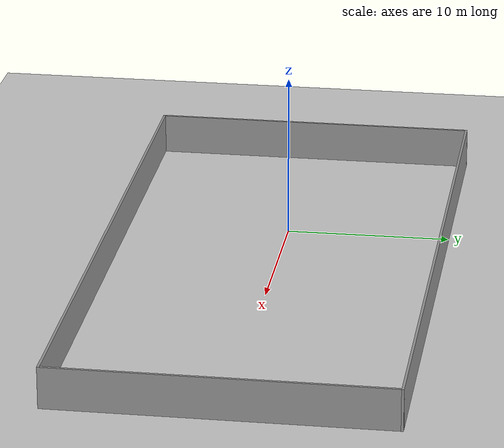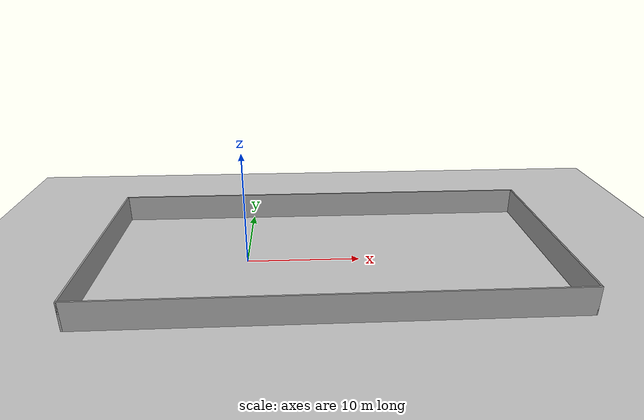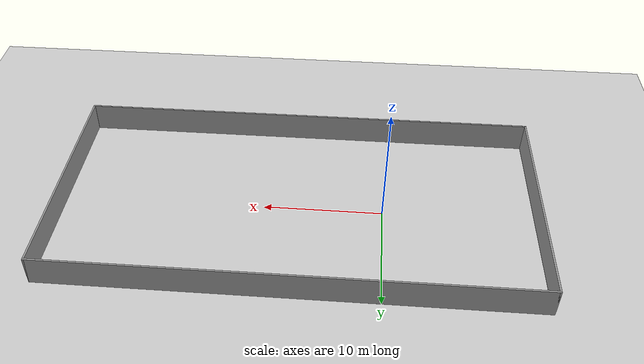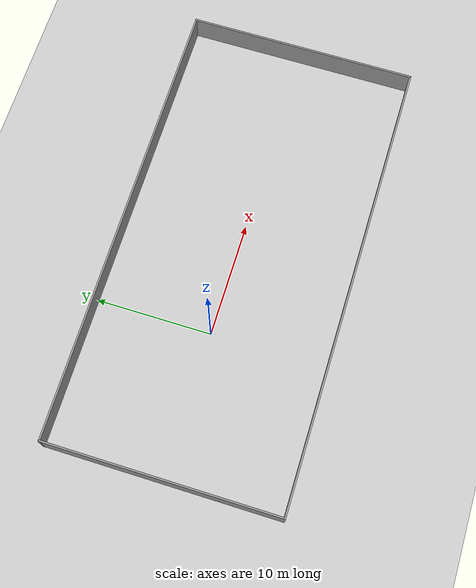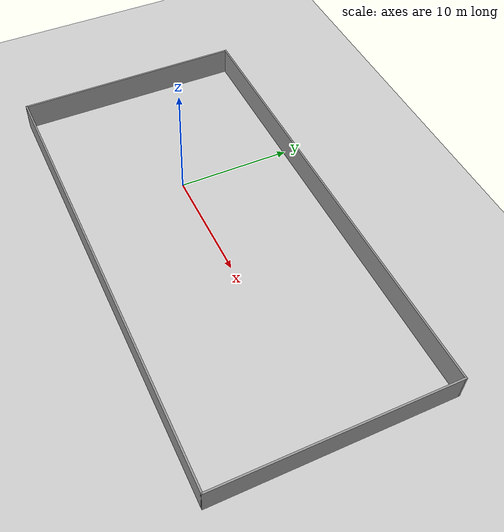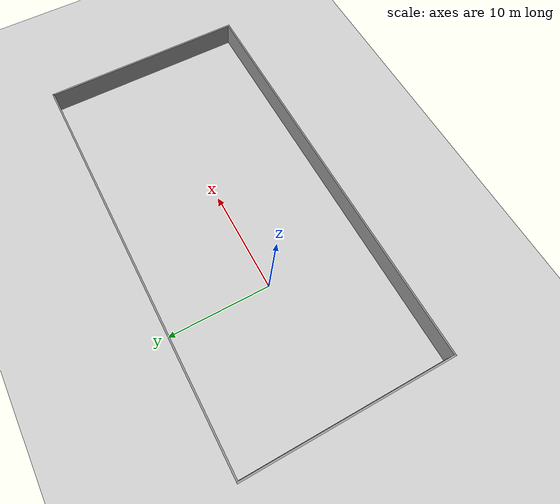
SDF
<sdf version="1.6">
 <world name="default">
  <model name="ground_plane">
   <static>1</static>
   <link name="link">
    <collision name="collision">
     <geometry><plane><normal>0 0 1</normal><size>100 100</size></plane></geometry>
     <surface><friction><ode><mu>100</mu><mu2>50</mu2></ode></friction></surface>
    </collision>
    <visual name="visual">
     <cast_shadows>0</cast_shadows>
     <geometry><plane><normal>0 0 1</normal><size>100 100</size></plane></geometry>
     <material>
      <script><uri>file://media/materials/scripts/gazebo.material</uri><name>Gazebo/Grey</name></script>
     </material>
    </visual>
   </link>
  </model>
  <model name="empty_world">
   <pose>7.18379 -0.043522 0 0 -0 0</pose>
   <link name="Wall_0">
    <collision name="Wall_0_Collision">
     <geometry><box><size>40.04 0.15 2.5</size></box></geometry>
     <pose>0 0 1.25 0 -0 0</pose>
    </collision>
    <visual name="Wall_0_Visual">
     <pose>0 0 1.25 0 -0 0</pose>
     <geometry><box><size>40.04 0.15 2.5</size></box></geometry>
     <material>
      <script><uri>file://media/materials/scripts/gazebo.material</uri><name>Gazebo/Grey</name></script>
      <ambient>1 1 1 1</ambient>
     </material>
    </visual>
    <pose>0 -10 0 0 -0 0</pose>
   </link>
   <link name="Wall_13">
    <collision name="Wall_13_Collision">
     <geometry><box><size>20.15 0.15 2.5</size></box></geometry>
     <pose>0 0 1.25 0 -0 0</pose>
    </collision>
    <visual name="Wall_13_Visual">
     <pose>0 0 1.25 0 -0 0</pose>
     <geometry><box><size>20.15 0.15 2.5</size></box></geometry>
     <material>
      <script><uri>file://media/materials/scripts/gazebo.material</uri><name>Gazebo/Grey</name></script>
      <ambient>1 1 1 1</ambient>
     </material>
    </visual>
    <pose>19.945 0 0 0 -0 1.5708</pose>
   </link>
   <link name="Wall_2">
    <collision name="Wall_2_Collision">
     <geometry><box><size>20.15 0.15 2.5</size></box></geometry>
     <pose>0 0 1.25 0 -0 0</pose>
    </collision>
    <visual name="Wall_2_Visual">
     <pose>0 0 1.25 0 -0 0</pose>
     <geometry><box><size>20.15 0.15 2.5</size></box></geometry>
     <material>
      <script><uri>file://media/materials/scripts/gazebo.material</uri><name>Gazebo/Grey</name></script>
      <ambient>1 1 1 1</ambient>
     </material>
    </visual>
    <pose>-19.945 0 0 0 0 -1.5708</pose>
   </link>
   <link name="Wall_4">
    <collision name="Wall_4_Collision">
     <geometry><box><size>40.0405 0.15 2.5</size></box></geometry>
     <pose>0 0 1.25 0 -0 0</pose>
    </collision>
    <visual name="Wall_4_Visual">
     <pose>0 0 1.25 0 -0 0</pose>
     <geometry><box><size>40.0405 0.15 2.5</size></box></geometry>
     <material>
      <script><uri>file://media/materials/scripts/gazebo.material</uri><name>Gazebo/Grey</name></script>
      <ambient>1 1 1 1</ambient>
     </material>
    </visual>
    <pose>0 10 0 0 -0 0</pose>
   </link>
   <static>1</static>
  </model>
 </world>
</sdf>
